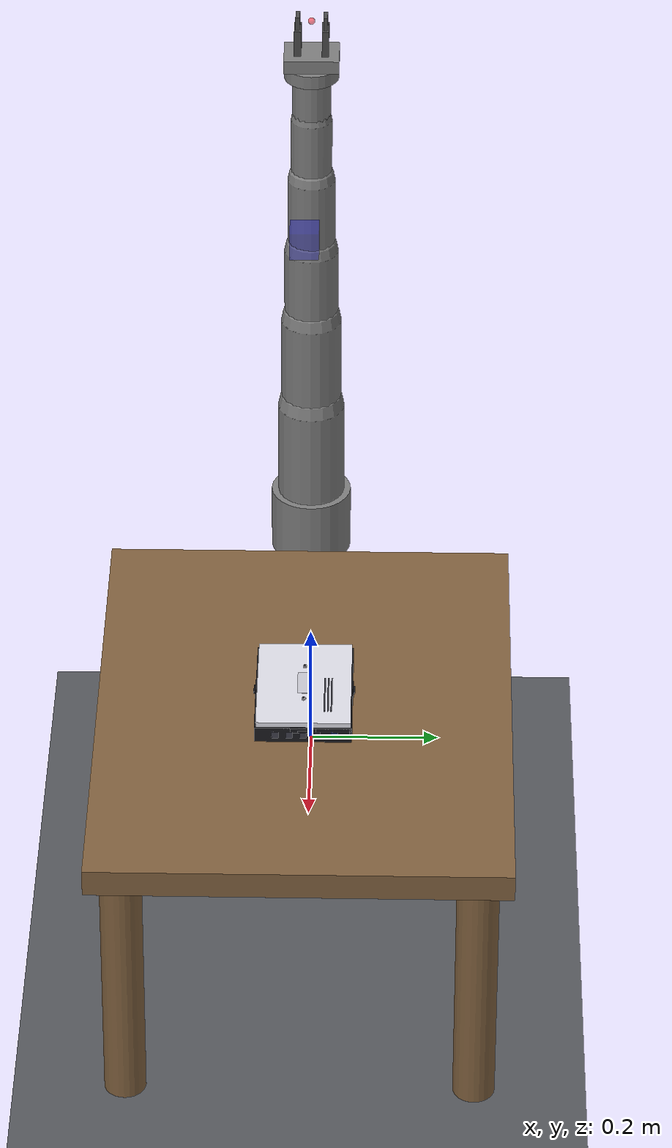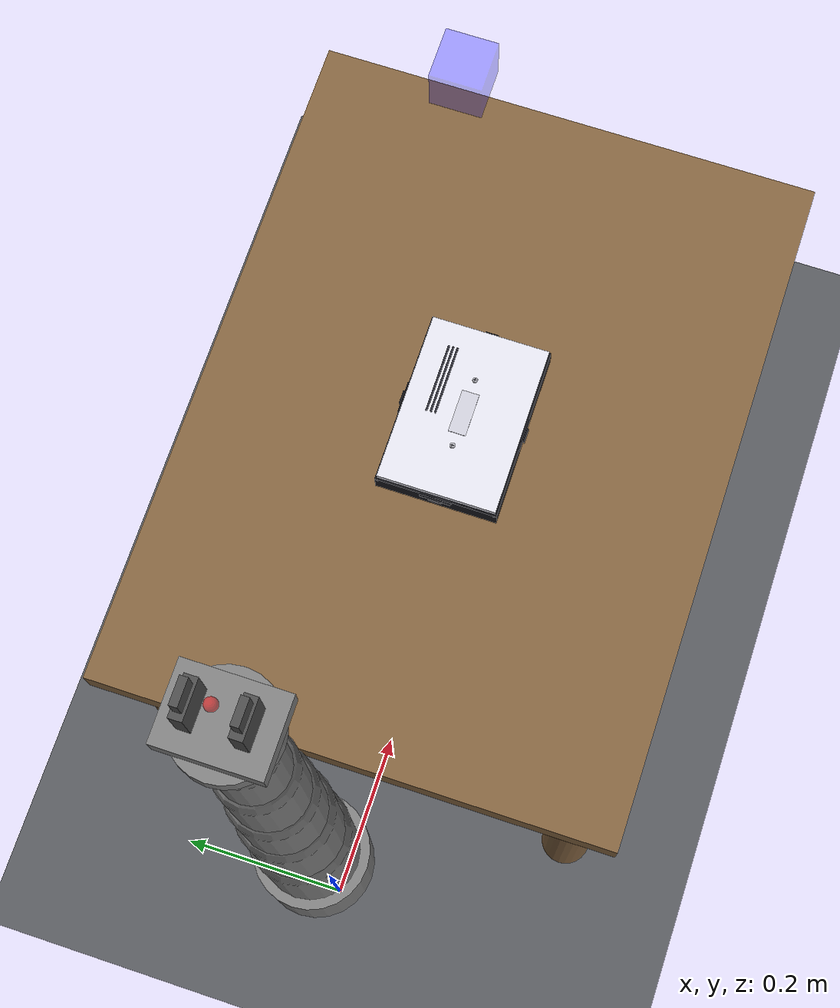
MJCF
<mujoco model="disassembly_arm">
  <compiler angle="radian" meshdir="../meshes/" />

  <option timestep="0.002" gravity="0 0 -9.81" integrator="implicitfast" />

  <visual>
    <global offwidth="2560" offheight="1440" />
  </visual>

  <default>
    <joint damping="1.0" armature="0.1" />
    <geom condim="4" friction="1.0 0.005 0.0001" />
    <motor ctrllimited="true" />
    <default class="robot">
      <geom rgba="0.5 0.5 0.5 1" />
    </default>
    <default class="finger">
      <geom rgba="0.3 0.3 0.3 1" friction="2.0 0.01 0.001" />
    </default>
    <default class="visual">
      <geom contype="0" conaffinity="0" group="1" />
    </default>
  <default class="device_body">
      <geom friction="0.8 0.005 0.001" />
    </default>
    <default class="snap_clip">
      <geom friction="0.6 0.003 0.001" />
      <joint stiffness="80" damping="8" />
    </default>
    <default class="connector">
      <geom friction="1.2 0.01 0.001" />
    </default>
    <default class="screw">
      <geom friction="0.3 0.001 0.0001" />
      <joint damping="0.5" />
    </default>
  </default>

  <asset>
    <texture name="grid" type="2d" builtin="checker" rgb1="0.32 0.33 0.35" rgb2="0.36 0.37 0.39" width="512" height="512" />
    <texture name="wood_tex" type="2d" builtin="gradient" rgb1="0.55 0.42 0.28" rgb2="0.48 0.36 0.22" width="256" height="256" />
    <material name="grid_mat" texture="grid" texrepeat="10 10" reflectance="0.04" specular="0.15" shininess="0.3" />
    <material name="robot_mat" rgba="0.72 0.72 0.74 1" specular="0.6" shininess="0.7" reflectance="0.08" />
    <material name="workbench_mat" texture="wood_tex" texrepeat="3 2" specular="0.15" shininess="0.2" reflectance="0.03" />
  <texture name="rtr_pcb_tex" type="2d" builtin="checker" rgb1="0.02 0.28 0.04" rgb2="0.01 0.20 0.03" width="128" height="128" />
    <material name="rtr_plastic" rgba="0.10 0.10 0.12 1" specular="0.5" shininess="0.7" reflectance="0.08" />
    <material name="rtr_top" rgba="0.88 0.88 0.92 1" specular="0.4" shininess="0.6" reflectance="0.06" />
    <material name="rtr_inner" rgba="0.18 0.18 0.22 1" specular="0.2" />
    <material name="rtr_pcb" texture="rtr_pcb_tex" texrepeat="3 2" specular="0.15" />
    <material name="rtr_screw" rgba="0.75 0.75 0.78 1" specular="0.9" shininess="0.95" reflectance="0.3" />
    <material name="rtr_gold" rgba="0.85 0.70 0.15 1" specular="0.7" shininess="0.8" />
    <material name="rtr_chip" rgba="0.08 0.08 0.10 1" specular="0.5" shininess="0.6" />
    <material name="rtr_shield" rgba="0.65 0.65 0.68 1" specular="0.6" shininess="0.7" reflectance="0.15" />
    <material name="rtr_rubber" rgba="0.10 0.10 0.10 1" specular="0.04" />
    <material name="rtr_led_green" rgba="0.1 0.9 0.1 1" specular="0.5" shininess="0.9" />
    <material name="rtr_led_off" rgba="0.15 0.15 0.15 1" specular="0.3" />
    <material name="rtr_port" rgba="0.25 0.25 0.30 1" specular="0.4" />
    <material name="rtr_label" rgba="0.86 0.86 0.88 1" specular="0.1" />
    <material name="rtr_conn_bk" rgba="0.04 0.04 0.04 1" specular="0.15" />
    <material name="rtr_trace" rgba="0.55 0.48 0.10 1" specular="0.3" />
    <material name="rtr_cap" rgba="0.12 0.12 0.25 1" specular="0.3" />
    <material name="rtr_cmos" rgba="0.72 0.72 0.72 1" specular="0.6" />
    <material name="rtr_ant_base" rgba="0.06 0.06 0.06 1" specular="0.15" />
  </asset>

  <worldbody>

    <geom name="floor" type="plane" size="1.5 1.5 0.01" material="grid_mat" />

    <body name="workbench" pos="0.5 0 0.4">
      <geom name="table_top" type="box" size="0.4 0.3 0.02" material="workbench_mat" mass="50" contype="1" conaffinity="1" />
      <geom name="leg1" type="cylinder" size="0.03 0.2" pos="-0.35 -0.25 -0.22" material="workbench_mat" mass="5" />
      <geom name="leg2" type="cylinder" size="0.03 0.2" pos="0.35 -0.25 -0.22" material="workbench_mat" mass="5" />
      <geom name="leg3" type="cylinder" size="0.03 0.2" pos="-0.35 0.25 -0.22" material="workbench_mat" mass="5" />
      <geom name="leg4" type="cylinder" size="0.03 0.2" pos="0.35 0.25 -0.22" material="workbench_mat" mass="5" />
    </body>

    <body name="base_link" pos="0 0 0.42" childclass="robot">
      <geom type="cylinder" size="0.06 0.05" mass="2" />
      <body name="link1" pos="0 0 0.05">
        <joint name="joint1" type="hinge" axis="0 0 1" range="-2.8973 2.8973" />
        <geom type="capsule" fromto="0 0 0 0 0 0.15" size="0.05" mass="3" />
        <body name="link2" pos="0 0 0.15">
          <joint name="joint2" type="hinge" axis="0 1 0" range="-1.7628 1.7628" />
          <geom type="capsule" fromto="0 0 0 0 0 0.15" size="0.045" mass="2.5" />
          <body name="link3" pos="0 0 0.15">
            <joint name="joint3" type="hinge" axis="0 0 1" range="-2.8973 2.8973" />
            <geom type="capsule" fromto="0 0 0 0 0 0.12" size="0.04" mass="2" />
            <body name="link4" pos="0 0 0.12">
              <joint name="joint4" type="hinge" axis="0 -1 0" range="-3.0718 -0.0698" />
              <geom type="capsule" fromto="0 0 0 0 0 0.12" size="0.035" mass="1.5" />
              <body name="link5" pos="0 0 0.12">
                <joint name="joint5" type="hinge" axis="0 0 1" range="-2.8973 2.8973" />
                <geom type="capsule" fromto="0 0 0 0 0 0.1" size="0.03" mass="1.2" />
                <body name="link6" pos="0 0 0.1">
                  <joint name="joint6" type="hinge" axis="0 1 0" range="-0.0175 3.7525" />
                  <geom type="capsule" fromto="0 0 0 0 0 0.08" size="0.028" mass="1" />
                  <body name="link7" pos="0 0 0.08">
                    <joint name="joint7" type="hinge" axis="0 0 1" range="-2.8973 2.8973" />
                    <geom type="cylinder" size="0.04 0.01" mass="0.5" />

                    <body name="gripper_base" pos="0 0 0.02">
                      <geom type="box" size="0.03 0.04 0.01" mass="0.3" />

                      <body name="left_finger" pos="0 -0.02 0.02" childclass="finger">
                        <joint name="finger_left" type="slide" axis="0 1 0" range="0 0.04" damping="10" stiffness="5" />
                        <geom type="box" size="0.015 0.005 0.03" mass="0.05" />
                        <geom name="left_fingertip" type="box" size="0.01 0.003 0.01" pos="0 0 0.04" mass="0.02" />
                      </body>

                      <body name="right_finger" pos="0 0.02 0.02" childclass="finger">
                        <joint name="finger_right" type="slide" axis="0 -1 0" range="0 0.04" damping="10" stiffness="5" />
                        <geom type="box" size="0.015 0.005 0.03" mass="0.05" />
                        <geom name="right_fingertip" type="box" size="0.01 0.003 0.01" pos="0 0 0.04" mass="0.02" />
                      </body>

                      <site name="wrist_cam" pos="0 0 -0.01" euler="0 3.14159 0" type="box" size="0.01 0.01 0.01" rgba="0 0 1 0.3" />

                      <site name="ee_site" pos="0 0 0.06" type="sphere" size="0.005" rgba="1 0 0 0.5" />

                      <site name="ft_sensor" pos="0 0 0" type="sphere" size="0.003" rgba="0 1 0 0.3" />
                    </body>
                  </body>
                </body>
              </body>
            </body>
          </body>
        </body>
      </body>
    </body>

    <body name="overhead_cam_mount" pos="0.5 0 1.2">
      <site name="overhead_cam" type="box" size="0.02 0.02 0.02" rgba="0 0 1 0.3" />
    </body>

    <light name="key_light" pos="0.5 -0.3 1.4" dir="0 0.15 -1" diffuse="0.9 0.85 0.8" specular="0.5 0.5 0.5" cutoff="55" />

    <light name="fill_light" pos="-0.3 0.5 1.0" dir="0.3 -0.2 -0.8" diffuse="0.35 0.38 0.42" specular="0.1 0.1 0.1" cutoff="80" />

    <light name="rim_light" pos="0.5 0.5 1.3" dir="0 -0.4 -0.8" diffuse="0.25 0.25 0.3" specular="0.2 0.2 0.2" cutoff="70" />

    <light name="ambient" pos="0 0 2" diffuse="0.18 0.18 0.20" directional="true" />
  <body name="router_base" pos="0.5 0 0.44">

      <geom name="bottom_shell" type="box" size="0.10 0.07 0.012" material="rtr_plastic" mass="0.12" />

      <geom name="rtr_rim_f" type="box" size="0.10 0.002 0.005" pos="0 -0.068 0.007" material="rtr_plastic" mass="0.01" />
      <geom name="rtr_rim_b" type="box" size="0.10 0.002 0.005" pos="0 0.068 0.007" material="rtr_plastic" mass="0.01" />
      <geom name="rtr_rim_l" type="box" size="0.002 0.07 0.005" pos="-0.098 0 0.007" material="rtr_plastic" mass="0.01" />
      <geom name="rtr_rim_r" type="box" size="0.002 0.07 0.005" pos="0.098 0 0.007" material="rtr_plastic" mass="0.01" />

      <geom name="foot1" type="cylinder" size="0.006 0.002" pos="-0.082 -0.055 -0.014" material="rtr_rubber" mass="0.005" />
      <geom name="foot2" type="cylinder" size="0.006 0.002" pos="0.082 -0.055 -0.014" material="rtr_rubber" mass="0.005" />
      <geom name="foot3" type="cylinder" size="0.006 0.002" pos="-0.082 0.055 -0.014" material="rtr_rubber" mass="0.005" />
      <geom name="foot4" type="cylinder" size="0.006 0.002" pos="0.082 0.055 -0.014" material="rtr_rubber" mass="0.005" />

      <geom name="eth1" type="box" size="0.006 0.005 0.005" pos="0.095 -0.04 0.000" material="rtr_port" mass="0.003" contype="0" conaffinity="0" />
      <geom name="eth2" type="box" size="0.006 0.005 0.005" pos="0.095 -0.02 0.000" material="rtr_port" mass="0.003" contype="0" conaffinity="0" />
      <geom name="eth3" type="box" size="0.006 0.005 0.005" pos="0.095 0.00 0.000" material="rtr_port" mass="0.003" contype="0" conaffinity="0" />
      <geom name="eth4" type="box" size="0.006 0.005 0.005" pos="0.095 0.02 0.000" material="rtr_port" mass="0.003" contype="0" conaffinity="0" />
      <geom name="wan_port" type="box" size="0.006 0.005 0.005" pos="0.095 0.045 0.000" rgba="0.20 0.25 0.50 1" mass="0.003" contype="0" conaffinity="0" />
      <geom name="pwr_jack" type="cylinder" size="0.004 0.005" pos="0.095 -0.058 0.000" rgba="0.15 0.15 0.15 1" mass="0.002" contype="0" conaffinity="0" />

      <geom name="led1" type="box" size="0.002 0.002 0.001" pos="-0.04 -0.065 0.013" material="rtr_led_green" mass="0.0001" contype="0" conaffinity="0" />
      <geom name="led2" type="box" size="0.002 0.002 0.001" pos="-0.02 -0.065 0.013" material="rtr_led_green" mass="0.0001" contype="0" conaffinity="0" />
      <geom name="led3" type="box" size="0.002 0.002 0.001" pos="0.00 -0.065 0.013" material="rtr_led_off" mass="0.0001" contype="0" conaffinity="0" />
      <geom name="led4" type="box" size="0.002 0.002 0.001" pos="0.02 -0.065 0.013" material="rtr_led_off" mass="0.0001" contype="0" conaffinity="0" />

      <geom name="rtr_label" type="box" size="0.05 0.03 0.0005" pos="0 0 -0.013" material="rtr_label" mass="0.002" contype="0" conaffinity="0" />

      <body name="top_cover" pos="0 0 0.012">
        <joint name="cover_lift" type="slide" axis="0 0 1" range="0 0.08" stiffness="300" damping="30" />

        <geom name="top_shell" type="box" size="0.098 0.068 0.008" material="rtr_top" mass="0.1" />

        <geom name="logo_indent" type="box" size="0.025 0.010 0.0005" pos="0 0 0.0085" rgba="0.80 0.80 0.84 1" mass="0.001" contype="0" conaffinity="0" />

        <geom name="rtr_vent1" type="box" size="0.04 0.001 0.0015" pos="0.03 0.04 0.009" material="rtr_inner" mass="0.0005" contype="0" conaffinity="0" />
        <geom name="rtr_vent2" type="box" size="0.04 0.001 0.0015" pos="0.03 0.035 0.009" material="rtr_inner" mass="0.0005" contype="0" conaffinity="0" />
        <geom name="rtr_vent3" type="box" size="0.04 0.001 0.0015" pos="0.03 0.030 0.009" material="rtr_inner" mass="0.0005" contype="0" conaffinity="0" />

        <body name="clip_front" pos="0 -0.068 -0.004" childclass="snap_clip">
          <joint name="clip_front_j" type="slide" axis="0 -1 0" range="0 0.01" />
          <geom name="clip_f_body" type="box" size="0.018 0.003 0.004" material="rtr_plastic" mass="0.002" />
          <geom name="clip_f_tab" type="box" size="0.008 0.001 0.002" pos="0 -0.004 0" material="rtr_plastic" mass="0.001" contype="0" conaffinity="0" />
          <site name="clip_front_site" type="sphere" size="0.004" rgba="0 0 0 0" />
        </body>

        <body name="clip_back" pos="0 0.068 -0.004" childclass="snap_clip">
          <joint name="clip_back_j" type="slide" axis="0 1 0" range="0 0.01" />
          <geom name="clip_b_body" type="box" size="0.018 0.003 0.004" material="rtr_plastic" mass="0.002" />
          <geom name="clip_b_tab" type="box" size="0.008 0.001 0.002" pos="0 0.004 0" material="rtr_plastic" mass="0.001" contype="0" conaffinity="0" />
          <site name="clip_back_site" type="sphere" size="0.004" rgba="0 0 0 0" />
        </body>

        <body name="clip_left" pos="-0.098 0 -0.004" childclass="snap_clip">
          <joint name="clip_left_j" type="slide" axis="-1 0 0" range="0 0.01" />
          <geom name="clip_l_body" type="box" size="0.003 0.018 0.004" material="rtr_plastic" mass="0.002" />
          <geom name="clip_l_tab" type="box" size="0.001 0.008 0.002" pos="-0.004 0 0" material="rtr_plastic" mass="0.001" contype="0" conaffinity="0" />
          <site name="clip_left_site" type="sphere" size="0.004" rgba="0 0 0 0" />
        </body>

        <body name="clip_right" pos="0.098 0 -0.004" childclass="snap_clip">
          <joint name="clip_right_j" type="slide" axis="1 0 0" range="0 0.01" />
          <geom name="clip_r_body" type="box" size="0.003 0.018 0.004" material="rtr_plastic" mass="0.002" />
          <geom name="clip_r_tab" type="box" size="0.001 0.008 0.002" pos="0.004 0 0" material="rtr_plastic" mass="0.001" contype="0" conaffinity="0" />
          <site name="clip_right_site" type="sphere" size="0.004" rgba="0 0 0 0" />
        </body>

        <body name="hidden_screw_1" pos="-0.04 0 0.009" childclass="screw">
          <joint name="hscrew_1_turn" type="hinge" axis="0 0 1" range="0 31.4159" stiffness="2.0" damping="0.3" />
          <joint name="hscrew_1_slide" type="slide" axis="0 0 1" range="0 0.012" stiffness="80" damping="4" />
          <geom name="hs1_head" type="cylinder" size="0.003 0.0015" material="rtr_screw" mass="0.001" />
          <geom name="hs1_xa" type="box" size="0.0018 0.0003 0.0005" pos="0 0 0.002" material="rtr_inner" mass="0.00005" contype="0" conaffinity="0" />
          <geom name="hs1_xb" type="box" size="0.0003 0.0018 0.0005" pos="0 0 0.002" material="rtr_inner" mass="0.00005" contype="0" conaffinity="0" />
          <geom name="hs1_shaft" type="cylinder" size="0.001 0.004" pos="0 0 -0.003" material="rtr_screw" mass="0.0005" />
          <site name="hscrew_1_site" type="sphere" size="0.003" rgba="0 0 0 0" />
        </body>

        <body name="hidden_screw_2" pos="0.04 0 0.009" childclass="screw">
          <joint name="hscrew_2_turn" type="hinge" axis="0 0 1" range="0 31.4159" stiffness="2.0" damping="0.3" />
          <joint name="hscrew_2_slide" type="slide" axis="0 0 1" range="0 0.012" stiffness="80" damping="4" />
          <geom name="hs2_head" type="cylinder" size="0.003 0.0015" material="rtr_screw" mass="0.001" />
          <geom name="hs2_xa" type="box" size="0.0018 0.0003 0.0005" pos="0 0 0.002" material="rtr_inner" mass="0.00005" contype="0" conaffinity="0" />
          <geom name="hs2_xb" type="box" size="0.0003 0.0018 0.0005" pos="0 0 0.002" material="rtr_inner" mass="0.00005" contype="0" conaffinity="0" />
          <geom name="hs2_shaft" type="cylinder" size="0.001 0.004" pos="0 0 -0.003" material="rtr_screw" mass="0.0005" />
          <site name="hscrew_2_site" type="sphere" size="0.003" rgba="0 0 0 0" />
        </body>
      </body>

      <body name="router_pcb" pos="0 0 0">
        <geom name="router_board" type="box" size="0.085 0.055 0.001" material="rtr_pcb" mass="0.08" />
        <site name="router_pcb_center" type="sphere" size="0.003" rgba="0 0 0 0" />

        <geom name="processor_pad" type="box" size="0.013 0.013 0.001" pos="0 0 0.002" material="rtr_chip" mass="0.01" contype="0" conaffinity="0" />
        <geom name="processor_hs" type="box" size="0.012 0.012 0.004" pos="0 0 0.005" material="rtr_shield" mass="0.02" />

        <geom name="wifi_chip" type="box" size="0.008 0.008 0.001" pos="0.04 0.02 0.002" material="rtr_chip" mass="0.005" contype="0" conaffinity="0" />
        <geom name="wifi_shield" type="box" size="0.010 0.010 0.003" pos="0.04 0.02 0.004" material="rtr_shield" mass="0.008" />

        <geom name="flash_chip" type="box" size="0.005 0.005 0.0008" pos="-0.04 -0.02 0.002" material="rtr_chip" mass="0.003" contype="0" conaffinity="0" />

        <geom name="rtr_ram" type="box" size="0.006 0.004 0.0008" pos="0.03 -0.03 0.002" material="rtr_chip" mass="0.003" contype="0" conaffinity="0" />

        <geom name="cap1" type="cylinder" size="0.002 0.003" pos="-0.06 0.03 0.004" material="rtr_cap" mass="0.001" contype="0" conaffinity="0" />
        <geom name="cap2" type="cylinder" size="0.002 0.003" pos="-0.06 0.02 0.004" material="rtr_cap" mass="0.001" contype="0" conaffinity="0" />
        <geom name="cap3" type="cylinder" size="0.0015 0.002" pos="-0.06 0.01 0.003" material="rtr_cap" mass="0.0005" contype="0" conaffinity="0" />

        <geom name="rtr_tr1" type="box" size="0.0003 0.035 0.0002" pos="0.015 0 0.001" material="rtr_trace" mass="0.0001" contype="0" conaffinity="0" />
        <geom name="rtr_tr2" type="box" size="0.035 0.0003 0.0002" pos="0 -0.01 0.001" material="rtr_trace" mass="0.0001" contype="0" conaffinity="0" />
        <geom name="rtr_tr3" type="box" size="0.0003 0.025 0.0002" pos="-0.03 0.01 0.001" material="rtr_trace" mass="0.0001" contype="0" conaffinity="0" />
        <geom name="rtr_tr4" type="box" size="0.02 0.0003 0.0002" pos="0.02 0.02 0.001" material="rtr_trace" mass="0.0001" contype="0" conaffinity="0" />

        <geom name="rtr_smd1" type="box" size="0.015 0.001 0.0005" pos="0.05 -0.04 0.001" rgba="0.06 0.06 0.06 1" mass="0.0005" contype="0" conaffinity="0" />
        <geom name="rtr_smd2" type="box" size="0.010 0.001 0.0005" pos="-0.05 -0.04 0.001" rgba="0.06 0.06 0.06 1" mass="0.0005" contype="0" conaffinity="0" />

        <body name="antenna_conn_1" pos="-0.085 0.03 0.002">
          <joint name="ant_conn_1" type="hinge" axis="0 0 1" range="0 6.28" stiffness="1.0" damping="0.2" />
          <geom name="ant1_base" type="cylinder" size="0.005 0.003" material="rtr_ant_base" mass="0.003" />
          <geom name="ant1_pin" type="cylinder" size="0.001 0.006" pos="0 0 0.005" material="rtr_gold" mass="0.001" />
          <geom name="ant1_ring" type="cylinder" size="0.004 0.001" pos="0 0 0.008" material="rtr_gold" mass="0.001" contype="0" conaffinity="0" />
          <site name="ant_conn_1_site" type="sphere" size="0.005" rgba="0 0 0 0" />
        </body>

        <body name="antenna_conn_2" pos="-0.085 -0.03 0.002">
          <joint name="ant_conn_2" type="hinge" axis="0 0 1" range="0 6.28" stiffness="1.0" damping="0.2" />
          <geom name="ant2_base" type="cylinder" size="0.005 0.003" material="rtr_ant_base" mass="0.003" />
          <geom name="ant2_pin" type="cylinder" size="0.001 0.006" pos="0 0 0.005" material="rtr_gold" mass="0.001" />
          <geom name="ant2_ring" type="cylinder" size="0.004 0.001" pos="0 0 0.008" material="rtr_gold" mass="0.001" contype="0" conaffinity="0" />
          <site name="ant_conn_2_site" type="sphere" size="0.005" rgba="0 0 0 0" />
        </body>
      </body>

      <body name="cmos_battery" pos="0.05 0.03 0.002">
        <joint name="cmos_batt_conn" type="slide" axis="0 0 1" range="0 0.01" stiffness="50" damping="3" />
        <geom name="coin_cell" type="cylinder" size="0.010 0.002" material="rtr_cmos" mass="0.003" />
        <geom name="cmos_plus" type="box" size="0.004 0.001 0.0003" pos="0 0 0.0025" rgba="0.50 0.50 0.50 1" mass="0.0001" contype="0" conaffinity="0" />
        <geom name="cmos_lbl" type="box" size="0.005 0.003 0.0003" pos="0 -0.003 0.0025" material="rtr_label" mass="0.0001" contype="0" conaffinity="0" />
        <site name="cmos_battery_zone" type="cylinder" size="0.01 0.002" rgba="0 0 0 0" />
        <site name="cmos_battery_site" type="sphere" size="0.004" rgba="0 0 0 0" />
      </body>

      <body name="eth_shield" pos="0.070 0 0.003">
        <geom name="shield_top" type="box" size="0.015 0.035 0.001" material="rtr_shield" mass="0.008" />
        <geom name="shield_wall_f" type="box" size="0.015 0.001 0.005" pos="0 -0.034 -0.004" material="rtr_shield" mass="0.002" contype="0" conaffinity="0" />
        <geom name="shield_wall_b" type="box" size="0.015 0.001 0.005" pos="0 0.034 -0.004" material="rtr_shield" mass="0.002" contype="0" conaffinity="0" />
        <geom name="shield_wall_l" type="box" size="0.001 0.035 0.005" pos="-0.014 0 -0.004" material="rtr_shield" mass="0.002" contype="0" conaffinity="0" />
      </body>
    </body>
  </worldbody>

  <actuator>
    <motor name="act_joint1" joint="joint1" ctrlrange="-87 87" />
    <motor name="act_joint2" joint="joint2" ctrlrange="-87 87" />
    <motor name="act_joint3" joint="joint3" ctrlrange="-87 87" />
    <motor name="act_joint4" joint="joint4" ctrlrange="-87 87" />
    <motor name="act_joint5" joint="joint5" ctrlrange="-12 12" />
    <motor name="act_joint6" joint="joint6" ctrlrange="-12 12" />
    <motor name="act_joint7" joint="joint7" ctrlrange="-12 12" />
    <motor name="act_finger_left" joint="finger_left" ctrlrange="0 0.04" />
    <motor name="act_finger_right" joint="finger_right" ctrlrange="0 0.04" />
  </actuator>

  <sensor>
    <jointpos name="joint1_pos" joint="joint1" />
    <jointpos name="joint2_pos" joint="joint2" />
    <jointpos name="joint3_pos" joint="joint3" />
    <jointpos name="joint4_pos" joint="joint4" />
    <jointpos name="joint5_pos" joint="joint5" />
    <jointpos name="joint6_pos" joint="joint6" />
    <jointpos name="joint7_pos" joint="joint7" />
    <jointvel name="joint1_vel" joint="joint1" />
    <jointvel name="joint2_vel" joint="joint2" />
    <jointvel name="joint3_vel" joint="joint3" />
    <jointvel name="joint4_vel" joint="joint4" />
    <jointvel name="joint5_vel" joint="joint5" />
    <jointvel name="joint6_vel" joint="joint6" />
    <jointvel name="joint7_vel" joint="joint7" />
    <touch name="left_finger_touch" site="ft_sensor" />
  </sensor>
</mujoco>
